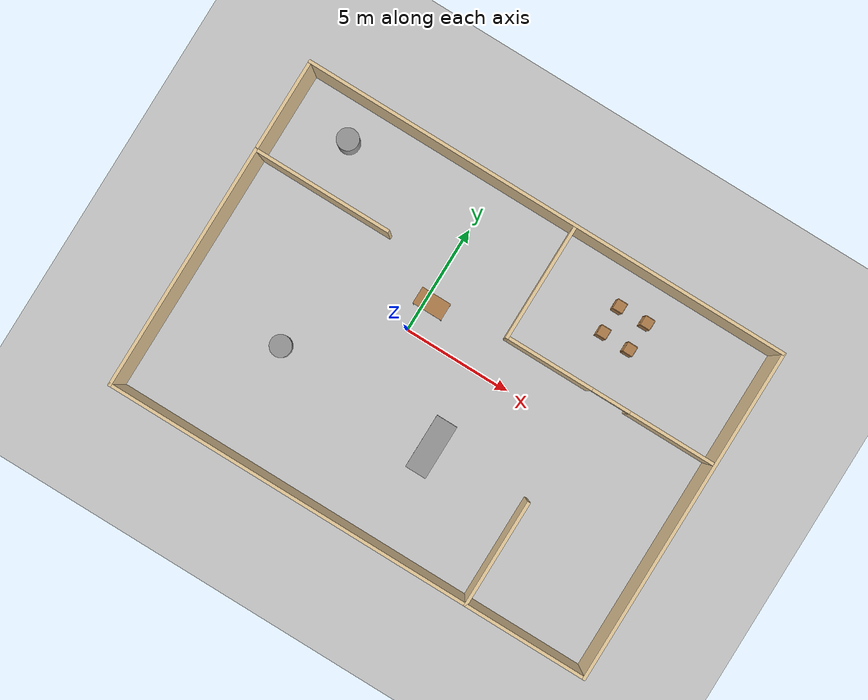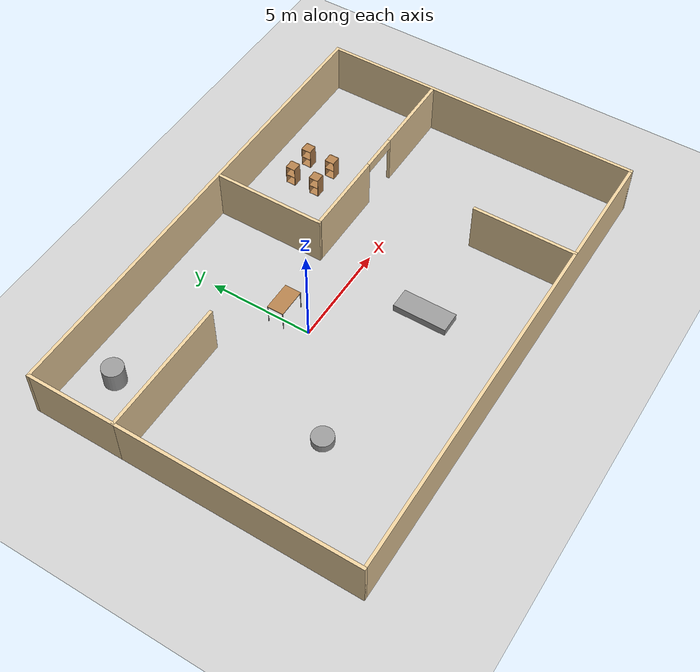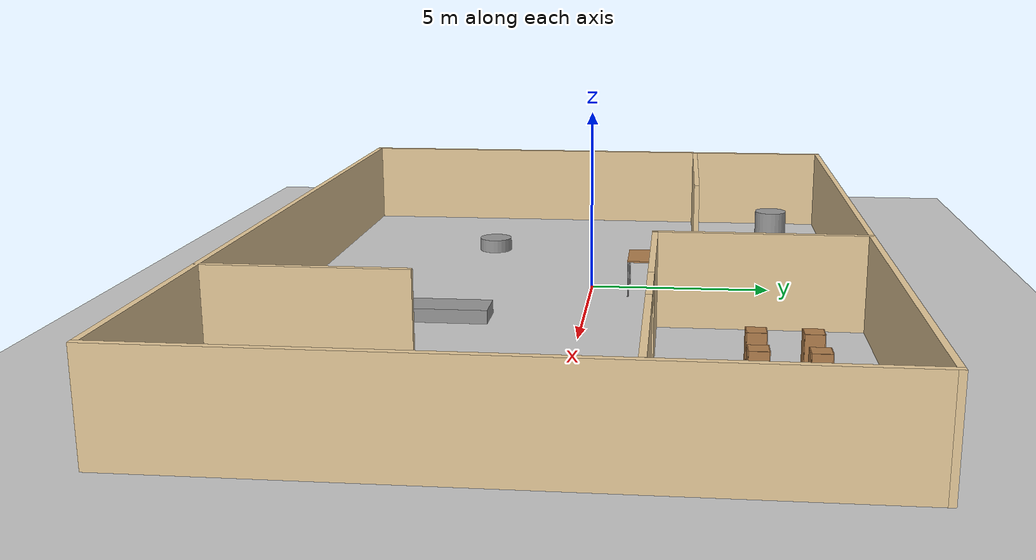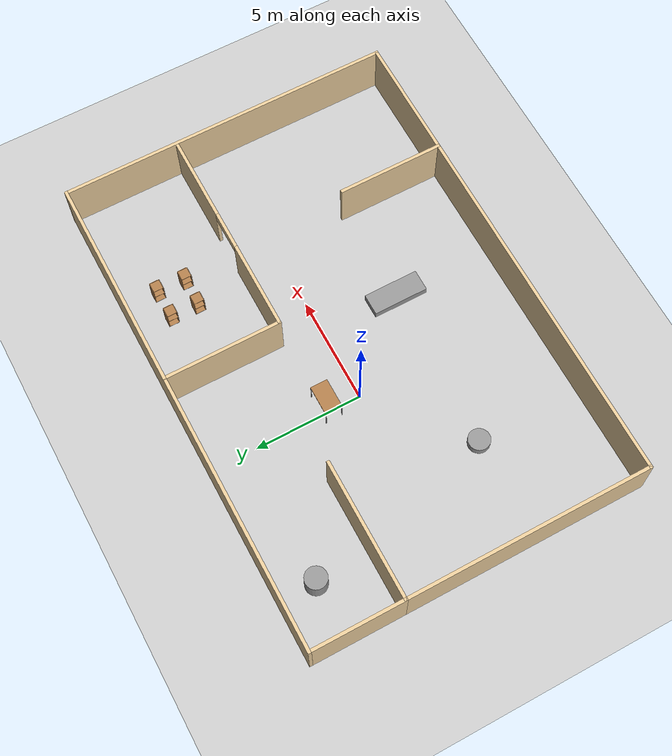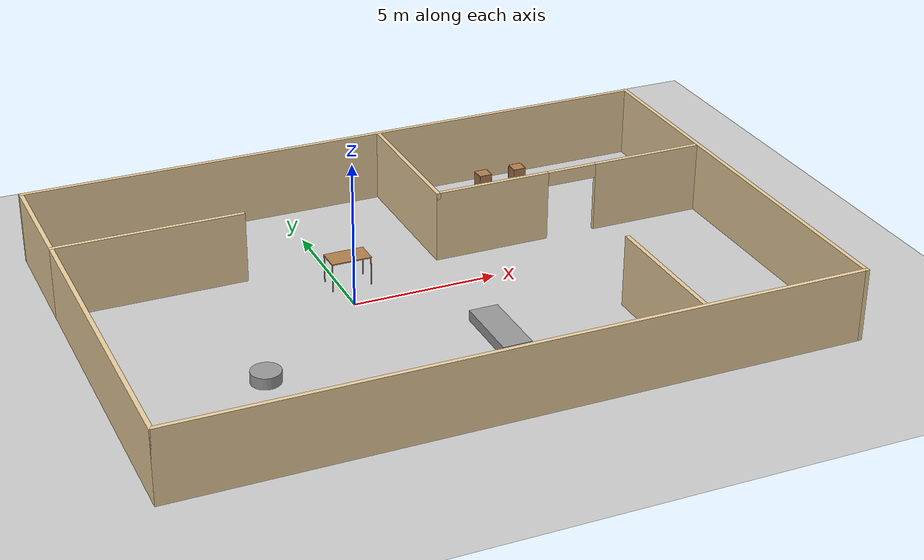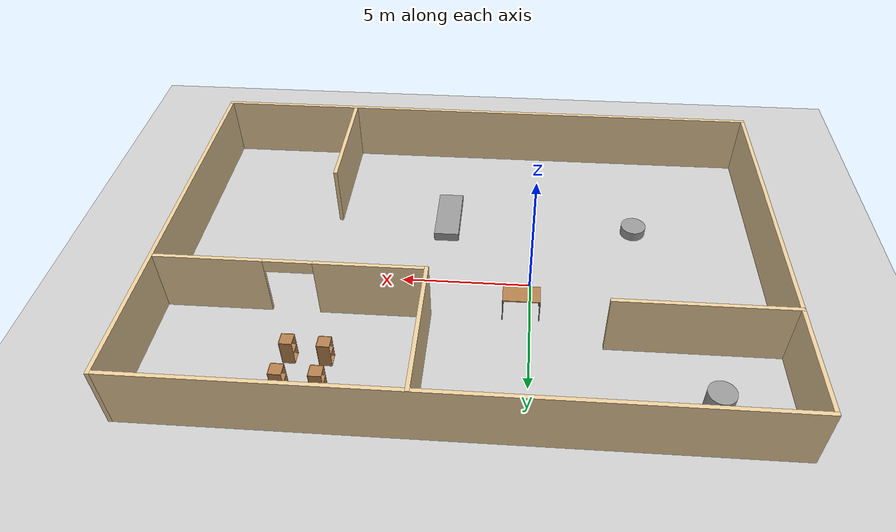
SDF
<sdf version="1.6">
 <world name="default">
  <light name="sun" type="directional">
   <pose>0 0 10 0 -0 0</pose>
   <diffuse>0.8 0.8 0.8 1</diffuse>
   <specular>0.1 0.1 0.1 1</specular>
   <attenuation>
    <range>1000</range>
    <constant>0.9</constant>
    <linear>0.01</linear>
    <quadratic>0.001</quadratic>
   </attenuation>
   <direction>-0.5 0.5 -1</direction>
  </light>
  <model name="ground_plane">
   <static>1</static>
   <link name="link">
    <collision name="collision">
     <geometry><plane><normal>0 0 1</normal><size>100 100</size></plane></geometry>
     <surface><friction><ode><mu>100</mu><mu2>50</mu2></ode></friction></surface>
    </collision>
    <visual name="visual">
     <cast_shadows>0</cast_shadows>
     <geometry><plane><normal>0 0 1</normal><size>100 100</size></plane></geometry>
     <material>
      <script><uri>file://media/materials/scripts/gazebo.material</uri><name>Gazebo/Grey</name></script>
     </material>
    </visual>
   </link>
  </model>
  <gravity>0 0 -9.8</gravity>
  <magnetic_field>6e-06 2.3e-05 -4.2e-05</magnetic_field>
  <atmosphere type="adiabatic"/>
  <physics name="default_physics" default="0" type="ode">
   <max_step_size>0.001</max_step_size>
   <real_time_factor>1</real_time_factor>
   <real_time_update_rate>1000</real_time_update_rate>
  </physics>
  <scene><ambient>0.4 0.4 0.4 1</ambient><background>0.7 0.7 0.7 1</background><shadows>1</shadows></scene>
  <spherical_coordinates>
   <surface_model>EARTH_WGS84</surface_model>
   <latitude_deg>0</latitude_deg>
   <longitude_deg>0</longitude_deg>
   <elevation>0</elevation>
   <heading_deg>0</heading_deg>
  </spherical_coordinates>
  <model name="rangetest">
   <pose>2.3338 -0.573865 0 0 -0 0</pose>
   <link name="Wall_0">
    <collision name="Wall_0_Collision">
     <geometry><box><size>11.5 0.15 2.5</size></box></geometry>
     <pose>0 0 1.25 0 -0 0</pose>
    </collision>
    <visual name="Wall_0_Visual">
     <pose>0 0 1.25 0 -0 0</pose>
     <geometry><box><size>11.5 0.15 2.5</size></box></geometry>
     <material>
      <script><uri>file://media/materials/scripts/gazebo.material</uri><name>Gazebo/Grey</name></script>
      <ambient>0.921569 0.807843 0.615686 1</ambient>
     </material>
    </visual>
    <pose>-11.425 -2.125 0 0 0 -1.5708</pose>
   </link>
   <link name="Wall_1">
    <collision name="Wall_1_Collision">
     <geometry><box><size>23 0.15 2.5</size></box></geometry>
     <pose>0 0 1.25 0 -0 0</pose>
    </collision>
    <visual name="Wall_1_Visual">
     <pose>0 0 1.25 0 -0 0</pose>
     <geometry><box><size>23 0.15 2.5</size></box></geometry>
     <material>
      <script><uri>file://media/materials/scripts/gazebo.material</uri><name>Gazebo/Grey</name></script>
      <ambient>0.921569 0.807843 0.615686 1</ambient>
     </material>
    </visual>
    <pose>0 -7.8 0 0 -0 0</pose>
   </link>
   <link name="Wall_10">
    <collision name="Wall_10_Collision">
     <geometry><box><size>5.5 0.15 2.5</size></box></geometry>
     <pose>0 0 1.25 0 -0 0</pose>
    </collision>
    <visual name="Wall_10_Visual">
     <pose>0 0 1.25 0 -0 0</pose>
     <geometry><box><size>5.5 0.15 2.5</size></box></geometry>
     <material>
      <script><uri>file://media/materials/scripts/gazebo.material</uri><name>Gazebo/Grey</name></script>
      <ambient>0.921569 0.807843 0.615686 1</ambient>
     </material>
    </visual>
    <pose>1.41808 5.10823 0 0 0 -1.5708</pose>
   </link>
   <link name="Wall_11">
    <pose>6.34308 2.43323 0 0 -0 0</pose>
    <visual name="Wall_11_Visual_0">
     <pose>-2.91237 0 1.25 0 -0 0</pose>
     <geometry><box><size>4.17526 0.15 2.5</size></box></geometry>
     <material>
      <script><uri>file://media/materials/scripts/gazebo.material</uri><name>Gazebo/Grey</name></script>
      <ambient>0.921569 0.807843 0.615686 1</ambient>
     </material>
    </visual>
    <collision name="Wall_11_Collision_0">
     <geometry><box><size>4.17526 0.15 2.5</size></box></geometry>
     <pose>-2.91237 0 1.25 0 -0 0</pose>
    </collision>
    <visual name="Wall_11_Visual_1">
     <pose>2.99188 0 1.25 0 -0 0</pose>
     <geometry><box><size>4.01624 0.15 2.5</size></box></geometry>
     <material>
      <script><uri>file://media/materials/scripts/gazebo.material</uri><name>Gazebo/Grey</name></script>
      <ambient>0.921569 0.807843 0.615686 1</ambient>
     </material>
    </visual>
    <collision name="Wall_11_Collision_1">
     <geometry><box><size>4.01624 0.15 2.5</size></box></geometry>
     <pose>2.99188 0 1.25 0 -0 0</pose>
    </collision>
    <visual name="Wall_11_Visual_2">
     <pose>0.079507 0 2.25 0 -0 0</pose>
     <geometry><box><size>1.8085 0.15 0.5</size></box></geometry>
     <material>
      <script><uri>file://media/materials/scripts/gazebo.material</uri><name>Gazebo/Grey</name></script>
      <ambient>0.921569 0.807843 0.615686 1</ambient>
     </material>
    </visual>
    <collision name="Wall_11_Collision_2">
     <geometry><box><size>1.8085 0.15 0.5</size></box></geometry>
     <pose>0.079507 0 2.25 0 -0 0</pose>
    </collision>
   </link>
   <link name="Wall_2">
    <collision name="Wall_2_Collision">
     <geometry><box><size>15.75 0.15 2.5</size></box></geometry>
     <pose>0 0 1.25 0 -0 0</pose>
    </collision>
    <visual name="Wall_2_Visual">
     <pose>0 0 1.25 0 -0 0</pose>
     <geometry><box><size>15.75 0.15 2.5</size></box></geometry>
     <material>
      <script><uri>file://media/materials/scripts/gazebo.material</uri><name>Gazebo/Grey</name></script>
      <ambient>0.921569 0.807843 0.615686 1</ambient>
     </material>
    </visual>
    <pose>11.425 0 0 0 -0 1.5708</pose>
   </link>
   <link name="Wall_3">
    <collision name="Wall_3_Collision">
     <geometry><box><size>23 0.15 2.5</size></box></geometry>
     <pose>0 0 1.25 0 -0 0</pose>
    </collision>
    <visual name="Wall_3_Visual">
     <pose>0 0 1.25 0 -0 0</pose>
     <geometry><box><size>23 0.15 2.5</size></box></geometry>
     <material>
      <script><uri>file://media/materials/scripts/gazebo.material</uri><name>Gazebo/Grey</name></script>
      <ambient>0.921569 0.807843 0.615686 1</ambient>
     </material>
    </visual>
    <pose>0 7.8 0 0 -0 3.14159</pose>
   </link>
   <link name="Wall_4">
    <collision name="Wall_4_Collision">
     <geometry><box><size>4.4 0.15 2.5</size></box></geometry>
     <pose>0 0 1.25 0 -0 0</pose>
    </collision>
    <visual name="Wall_4_Visual">
     <pose>0 0 1.25 0 -0 0</pose>
     <geometry><box><size>4.4 0.15 2.5</size></box></geometry>
     <material>
      <script><uri>file://media/materials/scripts/gazebo.material</uri><name>Gazebo/Grey</name></script>
      <ambient>0.921569 0.807843 0.615686 1</ambient>
     </material>
    </visual>
    <pose>-11.425 5.675 0 0 0 -1.5708</pose>
   </link>
   <link name="Wall_6">
    <collision name="Wall_6_Collision">
     <geometry><box><size>6.5 0.15 2.5</size></box></geometry>
     <pose>0 0 1.25 0 -0 0</pose>
    </collision>
    <visual name="Wall_6_Visual">
     <pose>0 0 1.25 0 -0 0</pose>
     <geometry><box><size>6.5 0.15 2.5</size></box></geometry>
     <material>
      <script><uri>file://media/materials/scripts/gazebo.material</uri><name>Gazebo/Grey</name></script>
      <ambient>0.921569 0.807843 0.615686 1</ambient>
     </material>
    </visual>
    <pose>-8.25 3.55 0 0 -0 0</pose>
   </link>
   <link name="Wall_8">
    <collision name="Wall_8_Collision">
     <geometry><box><size>5 0.15 2.5</size></box></geometry>
     <pose>0 0 1.25 0 -0 0</pose>
    </collision>
    <visual name="Wall_8_Visual">
     <pose>0 0 1.25 0 -0 0</pose>
     <geometry><box><size>5 0.15 2.5</size></box></geometry>
     <material>
      <script><uri>file://media/materials/scripts/gazebo.material</uri><name>Gazebo/Grey</name></script>
      <ambient>0.921569 0.807843 0.615686 1</ambient>
     </material>
    </visual>
    <pose>5.72503 -5.35832 0 0 -0 1.5708</pose>
   </link>
   <static>1</static>
  </model>
  <model name="unit_cylinder_0">
   <pose>-4.22009 -3.42837 0.197922 0 -0 0</pose>
   <link name="link">
    <inertial>
     <mass>1</mass>
     <inertia><ixx>0.145833</ixx><ixy>0</ixy><ixz>0</ixz><iyy>0.145833</iyy><iyz>0</iyz><izz>0.125</izz></inertia>
    </inertial>
    <collision name="collision">
     <geometry><cylinder><radius>0.5</radius><length>0.395845</length></cylinder></geometry>
    </collision>
    <visual name="visual">
     <geometry><cylinder><radius>0.5</radius><length>0.395845</length></cylinder></geometry>
     <material>
      <script><name>Gazebo/Grey</name><uri>file://media/materials/scripts/gazebo.material</uri></script>
     </material>
    </visual>
   </link>
  </model>
  <model name="unit_box_0">
   <pose>3.48802 -3.7052 0.183834 0 1e-05 7e-06</pose>
   <link name="link">
    <inertial>
     <mass>1</mass>
     <inertia>
      <ixx>0.166667</ixx>
      <ixy>0</ixy>
      <ixz>0</ixz>
      <iyy>0.166667</iyy>
      <iyz>0</iyz>
      <izz>0.166667</izz>
     </inertia>
    </inertial>
    <collision name="collision"><geometry><box><size>1 2.56526 0.367677</size></box></geometry></collision>
    <visual name="visual">
     <geometry><box><size>1 2.56526 0.367677</size></box></geometry>
     <material>
      <script><name>Gazebo/Grey</name><uri>file://media/materials/scripts/gazebo.material</uri></script>
     </material>
    </visual>
   </link>
  </model>
  <model name="unit_cylinder_1">
   <pose>-6.33094 5.4918 0.499992 -3e-06 2e-06 0</pose>
   <link name="link">
    <inertial>
     <mass>1</mass>
     <inertia><ixx>0.145833</ixx><ixy>0</ixy><ixz>0</ixz><iyy>0.145833</iyy><iyz>0</iyz><izz>0.125</izz></inertia>
    </inertial>
    <collision name="collision">
     <geometry><cylinder><radius>0.5</radius><length>1</length></cylinder></geometry>
    </collision>
    <visual name="visual">
     <geometry><cylinder><radius>0.5</radius><length>1</length></cylinder></geometry>
     <material>
      <script><name>Gazebo/Grey</name><uri>file://media/materials/scripts/gazebo.material</uri></script>
     </material>
    </visual>
   </link>
  </model>
  <model name="table">
   <static>0</static>
   <link name="link">
    <collision name="surface">
     <pose>0 0 1 0 -0 0</pose>
     <geometry><box><size>1.5 0.8 0.03</size></box></geometry>
     <surface><friction><ode><mu>0.6</mu><mu2>0.6</mu2></ode></friction></surface>
    </collision>
    <visual name="visual1">
     <pose>0 0 1 0 -0 0</pose>
     <geometry><box><size>1.4 0.8 0.04</size></box></geometry>
     <material>
      <script><uri>file://media/materials/scripts/gazebo.material</uri><name>Gazebo/Wood</name></script>
     </material>
    </visual>
    <collision name="front_left_leg">
     <pose>0.68 0.38 0.5 0 -0 0</pose>
     <geometry><cylinder><radius>0.02</radius><length>1</length></cylinder></geometry>
    </collision>
    <visual name="front_left_leg">
     <pose>0.68 0.38 0.5 0 -0 0</pose>
     <geometry><cylinder><radius>0.02</radius><length>1</length></cylinder></geometry>
     <material>
      <script><uri>file://media/materials/scripts/gazebo.material</uri><name>Gazebo/Grey</name></script>
     </material>
    </visual>
    <collision name="front_right_leg">
     <pose>0.68 -0.38 0.5 0 -0 0</pose>
     <geometry><cylinder><radius>0.02</radius><length>1</length></cylinder></geometry>
    </collision>
    <visual name="front_right_leg">
     <pose>0.68 -0.38 0.5 0 -0 0</pose>
     <geometry><cylinder><radius>0.02</radius><length>1</length></cylinder></geometry>
     <material>
      <script><uri>file://media/materials/scripts/gazebo.material</uri><name>Gazebo/Grey</name></script>
     </material>
    </visual>
    <collision name="back_right_leg">
     <pose>-0.68 -0.38 0.5 0 -0 0</pose>
     <geometry><cylinder><radius>0.02</radius><length>1</length></cylinder></geometry>
    </collision>
    <visual name="back_right_leg">
     <pose>-0.68 -0.38 0.5 0 -0 0</pose>
     <geometry><cylinder><radius>0.02</radius><length>1</length></cylinder></geometry>
     <material>
      <script><uri>file://media/materials/scripts/gazebo.material</uri><name>Gazebo/Grey</name></script>
     </material>
    </visual>
    <collision name="back_left_leg">
     <pose>-0.68 0.38 0.5 0 -0 0</pose>
     <geometry><cylinder><radius>0.02</radius><length>1</length></cylinder></geometry>
    </collision>
    <visual name="back_left_leg">
     <pose>-0.68 0.38 0.5 0 -0 0</pose>
     <geometry><cylinder><radius>0.02</radius><length>1</length></cylinder></geometry>
     <material>
      <script><uri>file://media/materials/scripts/gazebo.material</uri><name>Gazebo/Grey</name></script>
     </material>
    </visual>
    <inertial>
     <inertia><ixx>1</ixx><ixy>0</ixy><ixz>0</ixz><iyy>1</iyy><iyz>0</iyz><izz>1</izz></inertia>
     <mass>1</mass>
    </inertial>
   </link>
   <pose>0.32843 1.45476 -2e-06 -1e-06 0 0</pose>
  </model>
  <model name="cabinet">
   <static>1</static>
   <link name="cabinet_bottom_plate">
    <inertial>
     <pose>0 0 -1 0 -0 0</pose>
     <inertia><ixx>2.05</ixx><ixy>0</ixy><ixz>0</ixz><iyy>2.05</iyy><iyz>0</iyz><izz>2.05</izz></inertia>
     <mass>25</mass>
    </inertial>
    <collision name="cabinet_bottom_plate_geom">
     <pose>0 0 0.01 0 -0 0</pose>
     <geometry><box><size>0.45 0.45 0.02</size></box></geometry>
    </collision>
    <visual name="cabinet_bottom_plate_geom_visual">
     <pose>0 0 0.01 0 -0 0</pose>
     <geometry><box><size>0.45 0.45 0.02</size></box></geometry>
     <material>
      <script><uri>file://media/materials/scripts/gazebo.material</uri><name>Gazebo/Wood</name></script>
     </material>
    </visual>
    <collision name="cabinet_bottom_plate_geom_cabinet_back_plate">
     <pose>0.235 0 0.51 0 -0 0</pose>
     <geometry><box><size>0.02 0.45 1.02</size></box></geometry>
    </collision>
    <visual name="cabinet_bottom_plate_geom_cabinet_back_plate_visual">
     <pose>0.235 0 0.51 0 -0 0</pose>
     <geometry><box><size>0.02 0.45 1.02</size></box></geometry>
     <material>
      <script><uri>file://media/materials/scripts/gazebo.material</uri><name>Gazebo/Wood</name></script>
     </material>
    </visual>
    <collision name="cabinet_bottom_plate_geom_cabinet_left_plate">
     <pose>0 0.235 0.51 0 -0 0</pose>
     <geometry><box><size>0.45 0.02 1.02</size></box></geometry>
    </collision>
    <visual name="cabinet_bottom_plate_geom_cabinet_left_plate_visual">
     <pose>0 0.235 0.51 0 -0 0</pose>
     <geometry><box><size>0.45 0.02 1.02</size></box></geometry>
     <material>
      <script><uri>file://media/materials/scripts/gazebo.material</uri><name>Gazebo/Wood</name></script>
     </material>
    </visual>
    <collision name="cabinet_bottom_plate_geom_cabinet_middle_plate">
     <pose>0 0 0.51 0 -0 0</pose>
     <geometry><box><size>0.45 0.45 0.02</size></box></geometry>
    </collision>
    <visual name="cabinet_bottom_plate_geom_cabinet_middle_plate_visual">
     <pose>0 0 0.51 0 -0 0</pose>
     <geometry><box><size>0.45 0.45 0.02</size></box></geometry>
     <material>
      <script><uri>file://media/materials/scripts/gazebo.material</uri><name>Gazebo/Wood</name></script>
     </material>
    </visual>
    <collision name="cabinet_bottom_plate_geom_cabinet_right_plate">
     <pose>0 -0.235 0.51 0 -0 0</pose>
     <geometry><box><size>0.45 0.02 1.02</size></box></geometry>
    </collision>
    <visual name="cabinet_bottom_plate_geom_cabinet_right_plate_visual">
     <pose>0 -0.235 0.51 0 -0 0</pose>
     <geometry><box><size>0.45 0.02 1.02</size></box></geometry>
     <material>
      <script><uri>file://media/materials/scripts/gazebo.material</uri><name>Gazebo/Wood</name></script>
     </material>
    </visual>
    <collision name="cabinet_bottom_plate_geom_cabinet_top_plate">
     <pose>0 0 1.01 0 -0 0</pose>
     <geometry><box><size>0.45 0.45 0.02</size></box></geometry>
    </collision>
    <visual name="cabinet_bottom_plate_geom_cabinet_top_plate_visual">
     <pose>0 0 1.01 0 -0 0</pose>
     <geometry><box><size>0.45 0.45 0.02</size></box></geometry>
     <material>
      <script><uri>file://media/materials/scripts/gazebo.material</uri><name>Gazebo/Wood</name></script>
     </material>
    </visual>
   </link>
   <pose>7.12733 5.5297 0 0 -0 0</pose>
  </model>
  <model name="cabinet_clone">
   <static>1</static>
   <link name="cabinet_bottom_plate">
    <inertial>
     <pose>0 0 -1 0 -0 0</pose>
     <inertia><ixx>2.05</ixx><ixy>0</ixy><ixz>0</ixz><iyy>2.05</iyy><iyz>0</iyz><izz>2.05</izz></inertia>
     <mass>25</mass>
    </inertial>
    <collision name="cabinet_bottom_plate_geom">
     <pose>0 0 0.01 0 -0 0</pose>
     <geometry><box><size>0.45 0.45 0.02</size></box></geometry>
    </collision>
    <visual name="cabinet_bottom_plate_geom_visual">
     <pose>0 0 0.01 0 -0 0</pose>
     <geometry><box><size>0.45 0.45 0.02</size></box></geometry>
     <material>
      <script><uri>file://media/materials/scripts/gazebo.material</uri><name>Gazebo/Wood</name></script>
     </material>
    </visual>
    <collision name="cabinet_bottom_plate_geom_cabinet_back_plate">
     <pose>0.235 0 0.51 0 -0 0</pose>
     <geometry><box><size>0.02 0.45 1.02</size></box></geometry>
    </collision>
    <visual name="cabinet_bottom_plate_geom_cabinet_back_plate_visual">
     <pose>0.235 0 0.51 0 -0 0</pose>
     <geometry><box><size>0.02 0.45 1.02</size></box></geometry>
     <material>
      <script><uri>file://media/materials/scripts/gazebo.material</uri><name>Gazebo/Wood</name></script>
     </material>
    </visual>
    <collision name="cabinet_bottom_plate_geom_cabinet_left_plate">
     <pose>0 0.235 0.51 0 -0 0</pose>
     <geometry><box><size>0.45 0.02 1.02</size></box></geometry>
    </collision>
    <visual name="cabinet_bottom_plate_geom_cabinet_left_plate_visual">
     <pose>0 0.235 0.51 0 -0 0</pose>
     <geometry><box><size>0.45 0.02 1.02</size></box></geometry>
     <material>
      <script><uri>file://media/materials/scripts/gazebo.material</uri><name>Gazebo/Wood</name></script>
     </material>
    </visual>
    <collision name="cabinet_bottom_plate_geom_cabinet_middle_plate">
     <pose>0 0 0.51 0 -0 0</pose>
     <geometry><box><size>0.45 0.45 0.02</size></box></geometry>
    </collision>
    <visual name="cabinet_bottom_plate_geom_cabinet_middle_plate_visual">
     <pose>0 0 0.51 0 -0 0</pose>
     <geometry><box><size>0.45 0.45 0.02</size></box></geometry>
     <material>
      <script><uri>file://media/materials/scripts/gazebo.material</uri><name>Gazebo/Wood</name></script>
     </material>
    </visual>
    <collision name="cabinet_bottom_plate_geom_cabinet_right_plate">
     <pose>0 -0.235 0.51 0 -0 0</pose>
     <geometry><box><size>0.45 0.02 1.02</size></box></geometry>
    </collision>
    <visual name="cabinet_bottom_plate_geom_cabinet_right_plate_visual">
     <pose>0 -0.235 0.51 0 -0 0</pose>
     <geometry><box><size>0.45 0.02 1.02</size></box></geometry>
     <material>
      <script><uri>file://media/materials/scripts/gazebo.material</uri><name>Gazebo/Wood</name></script>
     </material>
    </visual>
    <collision name="cabinet_bottom_plate_geom_cabinet_top_plate">
     <pose>0 0 1.01 0 -0 0</pose>
     <geometry><box><size>0.45 0.45 0.02</size></box></geometry>
    </collision>
    <visual name="cabinet_bottom_plate_geom_cabinet_top_plate_visual">
     <pose>0 0 1.01 0 -0 0</pose>
     <geometry><box><size>0.45 0.45 0.02</size></box></geometry>
     <material>
      <script><uri>file://media/materials/scripts/gazebo.material</uri><name>Gazebo/Wood</name></script>
     </material>
    </visual>
   </link>
   <pose>8.48335 5.54612 0 0 -0 0</pose>
  </model>
  <model name="cabinet_clone_0">
   <static>1</static>
   <link name="cabinet_bottom_plate">
    <inertial>
     <pose>0 0 -1 0 -0 0</pose>
     <inertia><ixx>2.05</ixx><ixy>0</ixy><ixz>0</ixz><iyy>2.05</iyy><iyz>0</iyz><izz>2.05</izz></inertia>
     <mass>25</mass>
    </inertial>
    <collision name="cabinet_bottom_plate_geom">
     <pose>0 0 0.01 0 -0 0</pose>
     <geometry><box><size>0.45 0.45 0.02</size></box></geometry>
    </collision>
    <visual name="cabinet_bottom_plate_geom_visual">
     <pose>0 0 0.01 0 -0 0</pose>
     <geometry><box><size>0.45 0.45 0.02</size></box></geometry>
     <material>
      <script><uri>file://media/materials/scripts/gazebo.material</uri><name>Gazebo/Wood</name></script>
     </material>
    </visual>
    <collision name="cabinet_bottom_plate_geom_cabinet_back_plate">
     <pose>0.235 0 0.51 0 -0 0</pose>
     <geometry><box><size>0.02 0.45 1.02</size></box></geometry>
    </collision>
    <visual name="cabinet_bottom_plate_geom_cabinet_back_plate_visual">
     <pose>0.235 0 0.51 0 -0 0</pose>
     <geometry><box><size>0.02 0.45 1.02</size></box></geometry>
     <material>
      <script><uri>file://media/materials/scripts/gazebo.material</uri><name>Gazebo/Wood</name></script>
     </material>
    </visual>
    <collision name="cabinet_bottom_plate_geom_cabinet_left_plate">
     <pose>0 0.235 0.51 0 -0 0</pose>
     <geometry><box><size>0.45 0.02 1.02</size></box></geometry>
    </collision>
    <visual name="cabinet_bottom_plate_geom_cabinet_left_plate_visual">
     <pose>0 0.235 0.51 0 -0 0</pose>
     <geometry><box><size>0.45 0.02 1.02</size></box></geometry>
     <material>
      <script><uri>file://media/materials/scripts/gazebo.material</uri><name>Gazebo/Wood</name></script>
     </material>
    </visual>
    <collision name="cabinet_bottom_plate_geom_cabinet_middle_plate">
     <pose>0 0 0.51 0 -0 0</pose>
     <geometry><box><size>0.45 0.45 0.02</size></box></geometry>
    </collision>
    <visual name="cabinet_bottom_plate_geom_cabinet_middle_plate_visual">
     <pose>0 0 0.51 0 -0 0</pose>
     <geometry><box><size>0.45 0.45 0.02</size></box></geometry>
     <material>
      <script><uri>file://media/materials/scripts/gazebo.material</uri><name>Gazebo/Wood</name></script>
     </material>
    </visual>
    <collision name="cabinet_bottom_plate_geom_cabinet_right_plate">
     <pose>0 -0.235 0.51 0 -0 0</pose>
     <geometry><box><size>0.45 0.02 1.02</size></box></geometry>
    </collision>
    <visual name="cabinet_bottom_plate_geom_cabinet_right_plate_visual">
     <pose>0 -0.235 0.51 0 -0 0</pose>
     <geometry><box><size>0.45 0.02 1.02</size></box></geometry>
     <material>
      <script><uri>file://media/materials/scripts/gazebo.material</uri><name>Gazebo/Wood</name></script>
     </material>
    </visual>
    <collision name="cabinet_bottom_plate_geom_cabinet_top_plate">
     <pose>0 0 1.01 0 -0 0</pose>
     <geometry><box><size>0.45 0.45 0.02</size></box></geometry>
    </collision>
    <visual name="cabinet_bottom_plate_geom_cabinet_top_plate_visual">
     <pose>0 0 1.01 0 -0 0</pose>
     <geometry><box><size>0.45 0.45 0.02</size></box></geometry>
     <material>
      <script><uri>file://media/materials/scripts/gazebo.material</uri><name>Gazebo/Wood</name></script>
     </material>
    </visual>
   </link>
   <pose>8.43912 4.20969 0 0 -0 0</pose>
  </model>
  <model name="cabinet_clone_1">
   <static>1</static>
   <link name="cabinet_bottom_plate">
    <inertial>
     <pose>0 0 -1 0 -0 0</pose>
     <inertia><ixx>2.05</ixx><ixy>0</ixy><ixz>0</ixz><iyy>2.05</iyy><iyz>0</iyz><izz>2.05</izz></inertia>
     <mass>25</mass>
    </inertial>
    <collision name="cabinet_bottom_plate_geom">
     <pose>0 0 0.01 0 -0 0</pose>
     <geometry><box><size>0.45 0.45 0.02</size></box></geometry>
    </collision>
    <visual name="cabinet_bottom_plate_geom_visual">
     <pose>0 0 0.01 0 -0 0</pose>
     <geometry><box><size>0.45 0.45 0.02</size></box></geometry>
     <material>
      <script><uri>file://media/materials/scripts/gazebo.material</uri><name>Gazebo/Wood</name></script>
     </material>
    </visual>
    <collision name="cabinet_bottom_plate_geom_cabinet_back_plate">
     <pose>0.235 0 0.51 0 -0 0</pose>
     <geometry><box><size>0.02 0.45 1.02</size></box></geometry>
    </collision>
    <visual name="cabinet_bottom_plate_geom_cabinet_back_plate_visual">
     <pose>0.235 0 0.51 0 -0 0</pose>
     <geometry><box><size>0.02 0.45 1.02</size></box></geometry>
     <material>
      <script><uri>file://media/materials/scripts/gazebo.material</uri><name>Gazebo/Wood</name></script>
     </material>
    </visual>
    <collision name="cabinet_bottom_plate_geom_cabinet_left_plate">
     <pose>0 0.235 0.51 0 -0 0</pose>
     <geometry><box><size>0.45 0.02 1.02</size></box></geometry>
    </collision>
    <visual name="cabinet_bottom_plate_geom_cabinet_left_plate_visual">
     <pose>0 0.235 0.51 0 -0 0</pose>
     <geometry><box><size>0.45 0.02 1.02</size></box></geometry>
     <material>
      <script><uri>file://media/materials/scripts/gazebo.material</uri><name>Gazebo/Wood</name></script>
     </material>
    </visual>
    <collision name="cabinet_bottom_plate_geom_cabinet_middle_plate">
     <pose>0 0 0.51 0 -0 0</pose>
     <geometry><box><size>0.45 0.45 0.02</size></box></geometry>
    </collision>
    <visual name="cabinet_bottom_plate_geom_cabinet_middle_plate_visual">
     <pose>0 0 0.51 0 -0 0</pose>
     <geometry><box><size>0.45 0.45 0.02</size></box></geometry>
     <material>
      <script><uri>file://media/materials/scripts/gazebo.material</uri><name>Gazebo/Wood</name></script>
     </material>
    </visual>
    <collision name="cabinet_bottom_plate_geom_cabinet_right_plate">
     <pose>0 -0.235 0.51 0 -0 0</pose>
     <geometry><box><size>0.45 0.02 1.02</size></box></geometry>
    </collision>
    <visual name="cabinet_bottom_plate_geom_cabinet_right_plate_visual">
     <pose>0 -0.235 0.51 0 -0 0</pose>
     <geometry><box><size>0.45 0.02 1.02</size></box></geometry>
     <material>
      <script><uri>file://media/materials/scripts/gazebo.material</uri><name>Gazebo/Wood</name></script>
     </material>
    </visual>
    <collision name="cabinet_bottom_plate_geom_cabinet_top_plate">
     <pose>0 0 1.01 0 -0 0</pose>
     <geometry><box><size>0.45 0.45 0.02</size></box></geometry>
    </collision>
    <visual name="cabinet_bottom_plate_geom_cabinet_top_plate_visual">
     <pose>0 0 1.01 0 -0 0</pose>
     <geometry><box><size>0.45 0.45 0.02</size></box></geometry>
     <material>
      <script><uri>file://media/materials/scripts/gazebo.material</uri><name>Gazebo/Wood</name></script>
     </material>
    </visual>
   </link>
   <pose>7.11578 4.23896 0 0 -0 0</pose>
  </model>
 </world>
</sdf>
